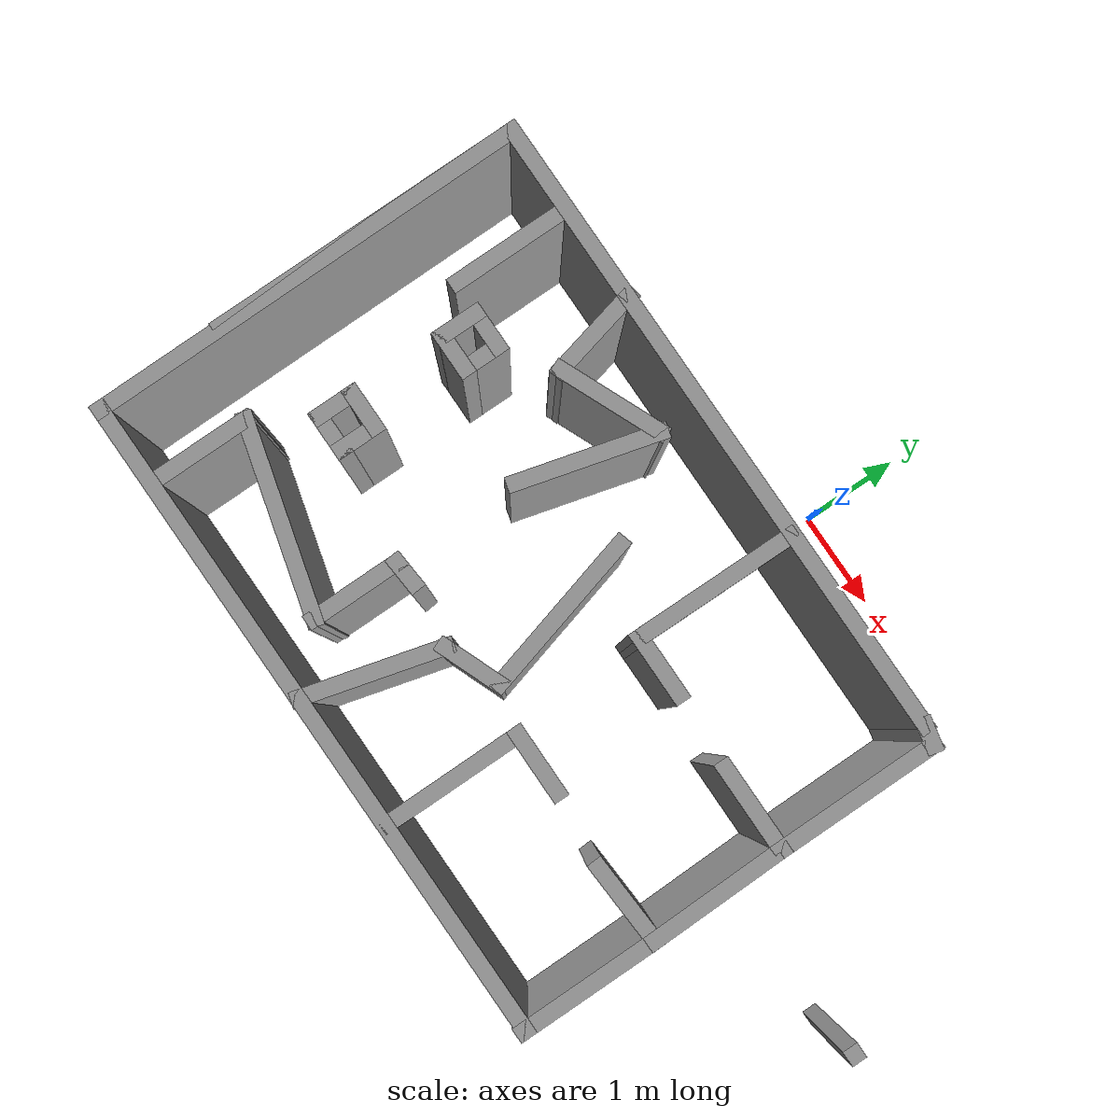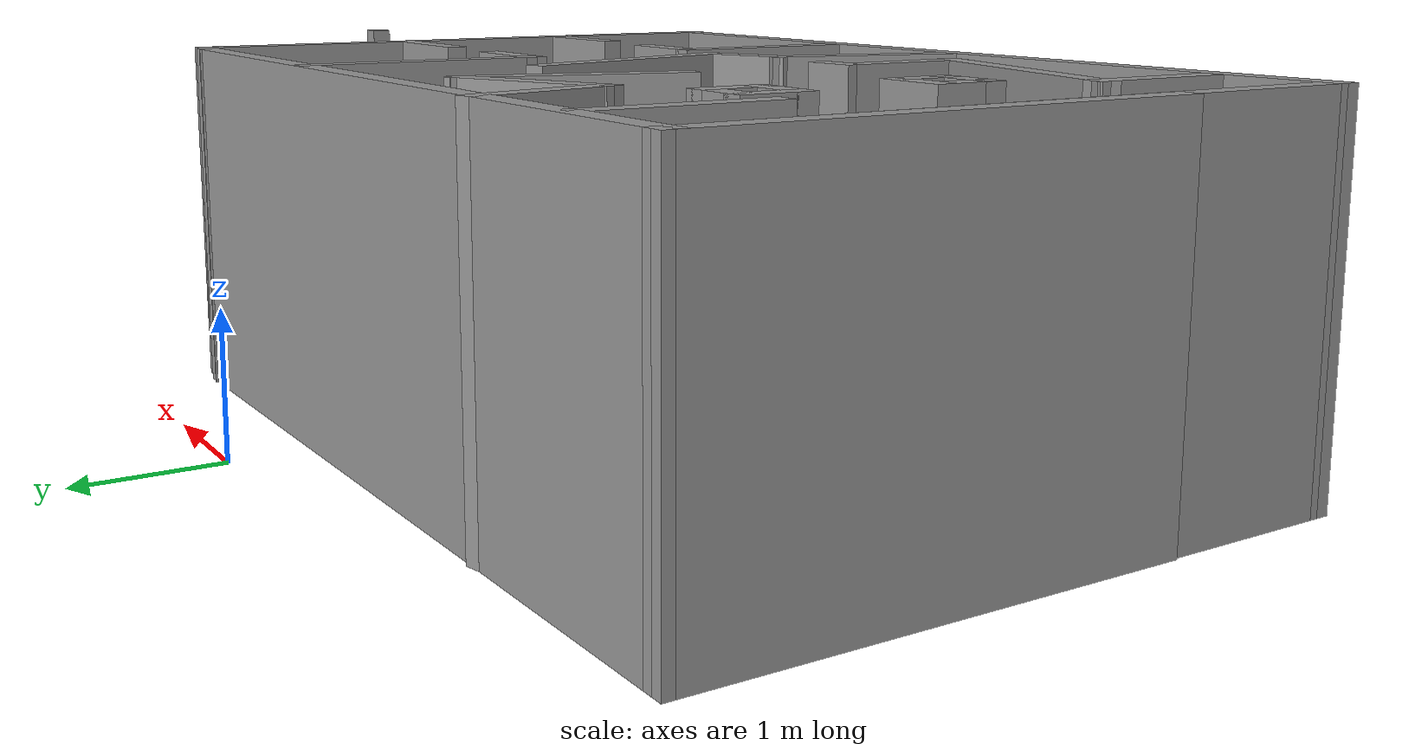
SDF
<?xml version='1.0'?>
<sdf version='1.7'>
  <model name='Maze_Testing'>
    <pose>-0.13169 -2.53776 0 0 -0 0</pose>
    <link name='Wall_0'>
      <collision name='Wall_0_Collision'>
        <geometry>
          <box>
            <size>3.25 0.15 2.5</size>
          </box>
        </geometry>
        <pose>0 0 1.25 0 -0 0</pose>
      </collision>
      <visual name='Wall_0_Visual'>
        <pose>0 0 1.25 0 -0 0</pose>
        <geometry>
          <box>
            <size>3.25 0.15 2.5</size>
          </box>
        </geometry>
        <material>
          <script>
            <uri>file://media/materials/scripts/gazebo.material</uri>
            <name>Gazebo/Grey</name>
          </script>
          <ambient>1 1 1 1</ambient>
        </material>
        <meta>
          <layer>0</layer>
        </meta>
      </visual>
      <pose>-4.15831 0.367759 0 0 -0 1.5708</pose>
    </link>
    <link name='Wall_1'>
      <collision name='Wall_1_Collision'>
        <geometry>
          <box>
            <size>4.53001 0.15 2.5</size>
          </box>
        </geometry>
        <pose>0 0 1.25 0 -0 0</pose>
      </collision>
      <visual name='Wall_1_Visual'>
        <pose>0 0 1.25 0 -0 0</pose>
        <geometry>
          <box>
            <size>4.53001 0.15 2.5</size>
          </box>
        </geometry>
        <material>
          <script>
            <uri>file://media/materials/scripts/gazebo.material</uri>
            <name>Gazebo/Grey</name>
          </script>
          <ambient>1 1 1 1</ambient>
        </material>
        <meta>
          <layer>0</layer>
        </meta>
      </visual>
      <pose>-4.14831 -0.272241 0 0 -0 -1.56623</pose>
    </link>
    <link name='Wall_10'>
      <collision name='Wall_10_Collision'>
        <geometry>
          <box>
            <size>0.5 0.15 2.5</size>
          </box>
        </geometry>
        <pose>0 0 1.25 0 -0 0</pose>
      </collision>
      <visual name='Wall_10_Visual'>
        <pose>0 0 1.25 0 -0 0</pose>
        <geometry>
          <box>
            <size>0.5 0.15 2.5</size>
          </box>
        </geometry>
        <material>
          <script>
            <uri>file://media/materials/scripts/gazebo.material</uri>
            <name>Gazebo/Grey</name>
          </script>
          <ambient>1 1 1 1</ambient>
        </material>
        <meta>
          <layer>0</layer>
        </meta>
      </visual>
      <pose>-2.81331 0.377759 0 0 -0 3.14159</pose>
    </link>
    <link name='Wall_11'>
      <collision name='Wall_11_Collision'>
        <geometry>
          <box>
            <size>0.5 0.15 2.5</size>
          </box>
        </geometry>
        <pose>0 0 1.25 0 -0 0</pose>
      </collision>
      <visual name='Wall_11_Visual'>
        <pose>0 0 1.25 0 -0 0</pose>
        <geometry>
          <box>
            <size>0.5 0.15 2.5</size>
          </box>
        </geometry>
        <material>
          <script>
            <uri>file://media/materials/scripts/gazebo.material</uri>
            <name>Gazebo/Grey</name>
          </script>
          <ambient>1 1 1 1</ambient>
        </material>
        <meta>
          <layer>0</layer>
        </meta>
      </visual>
      <pose>-2.98831 0.552759 0 0 -0 1.5708</pose>
    </link>
    <link name='Wall_13'>
      <collision name='Wall_13_Collision'>
        <geometry>
          <box>
            <size>0.5 0.15 2.5</size>
          </box>
        </geometry>
        <pose>0 0 1.25 0 -0 0</pose>
      </collision>
      <visual name='Wall_13_Visual'>
        <pose>0 0 1.25 0 -0 0</pose>
        <geometry>
          <box>
            <size>0.5 0.15 2.5</size>
          </box>
        </geometry>
        <material>
          <script>
            <uri>file://media/materials/scripts/gazebo.material</uri>
            <name>Gazebo/Grey</name>
          </script>
          <ambient>1 1 1 1</ambient>
        </material>
        <meta>
          <layer>0</layer>
        </meta>
      </visual>
      <pose>-2.83331 -0.562241 0 0 -0 0</pose>
    </link>
    <link name='Wall_14'>
      <collision name='Wall_14_Collision'>
        <geometry>
          <box>
            <size>0.5 0.15 2.5</size>
          </box>
        </geometry>
        <pose>0 0 1.25 0 -0 0</pose>
      </collision>
      <visual name='Wall_14_Visual'>
        <pose>0 0 1.25 0 -0 0</pose>
        <geometry>
          <box>
            <size>0.5 0.15 2.5</size>
          </box>
        </geometry>
        <material>
          <script>
            <uri>file://media/materials/scripts/gazebo.material</uri>
            <name>Gazebo/Grey</name>
          </script>
          <ambient>1 1 1 1</ambient>
        </material>
        <meta>
          <layer>0</layer>
        </meta>
      </visual>
      <pose>-2.65831 -0.737242 0 0 -0 -1.5708</pose>
    </link>
    <link name='Wall_15'>
      <collision name='Wall_15_Collision'>
        <geometry>
          <box>
            <size>0.5 0.15 2.5</size>
          </box>
        </geometry>
        <pose>0 0 1.25 0 -0 0</pose>
      </collision>
      <visual name='Wall_15_Visual'>
        <pose>0 0 1.25 0 -0 0</pose>
        <geometry>
          <box>
            <size>0.5 0.15 2.5</size>
          </box>
        </geometry>
        <material>
          <script>
            <uri>file://media/materials/scripts/gazebo.material</uri>
            <name>Gazebo/Grey</name>
          </script>
          <ambient>1 1 1 1</ambient>
        </material>
        <meta>
          <layer>0</layer>
        </meta>
      </visual>
      <pose>-2.83331 -0.912241 0 0 -0 3.14159</pose>
    </link>
    <link name='Wall_16'>
      <collision name='Wall_16_Collision'>
        <geometry>
          <box>
            <size>0.5 0.15 2.5</size>
          </box>
        </geometry>
        <pose>0 0 1.25 0 -0 0</pose>
      </collision>
      <visual name='Wall_16_Visual'>
        <pose>0 0 1.25 0 -0 0</pose>
        <geometry>
          <box>
            <size>0.5 0.15 2.5</size>
          </box>
        </geometry>
        <material>
          <script>
            <uri>file://media/materials/scripts/gazebo.material</uri>
            <name>Gazebo/Grey</name>
          </script>
          <ambient>1 1 1 1</ambient>
        </material>
        <meta>
          <layer>0</layer>
        </meta>
      </visual>
      <pose>-3.00831 -0.737242 0 0 -0 1.5708</pose>
    </link>
    <link name='Wall_18'>
      <collision name='Wall_18_Collision'>
        <geometry>
          <box>
            <size>1 0.15 2.5</size>
          </box>
        </geometry>
        <pose>0 0 1.25 0 -0 0</pose>
      </collision>
      <visual name='Wall_18_Visual'>
        <pose>0 0 1.25 0 -0 0</pose>
        <geometry>
          <box>
            <size>1 0.15 2.5</size>
          </box>
        </geometry>
        <material>
          <script>
            <uri>file://media/materials/scripts/gazebo.material</uri>
            <name>Gazebo/Grey</name>
          </script>
          <ambient>1 1 1 1</ambient>
        </material>
        <meta>
          <layer>0</layer>
        </meta>
      </visual>
      <pose>-3.34831 -1.88724 0 0 -0 1.5708</pose>
    </link>
    <link name='Wall_19'>
      <collision name='Wall_19_Collision'>
        <geometry>
          <box>
            <size>2 0.15 2.5</size>
          </box>
        </geometry>
        <pose>0 0 1.25 0 -0 0</pose>
      </collision>
      <visual name='Wall_19_Visual'>
        <pose>0 0 1.25 0 -0 0</pose>
        <geometry>
          <box>
            <size>2 0.15 2.5</size>
          </box>
        </geometry>
        <material>
          <script>
            <uri>file://media/materials/scripts/gazebo.material</uri>
            <name>Gazebo/Grey</name>
          </script>
          <ambient>1 1 1 1</ambient>
        </material>
        <meta>
          <layer>0</layer>
        </meta>
      </visual>
      <pose>-2.45483 -1.70165 0 0 -0 -0.261799</pose>
    </link>
    <link name='Wall_20'>
      <collision name='Wall_20_Collision'>
        <geometry>
          <box>
            <size>1.01 0.15 2.5</size>
          </box>
        </geometry>
        <pose>0 0 1.25 0 -0 0</pose>
      </collision>
      <visual name='Wall_20_Visual'>
        <pose>0 0 1.25 0 -0 0</pose>
        <geometry>
          <box>
            <size>1.01 0.15 2.5</size>
          </box>
        </geometry>
        <material>
          <script>
            <uri>file://media/materials/scripts/gazebo.material</uri>
            <name>Gazebo/Grey</name>
          </script>
          <ambient>1 1 1 1</ambient>
        </material>
        <meta>
          <layer>0</layer>
        </meta>
      </visual>
      <pose>-1.56135 -1.51106 0 0 -0 1.5708</pose>
    </link>
    <link name='Wall_27'>
      <collision name='Wall_27_Collision'>
        <geometry>
          <box>
            <size>1.03195 0.15 2.5</size>
          </box>
        </geometry>
        <pose>0 0 1.25 0 -0 0</pose>
      </collision>
      <visual name='Wall_27_Visual'>
        <pose>0 0 1.25 0 -0 0</pose>
        <geometry>
          <box>
            <size>1.03195 0.15 2.5</size>
          </box>
        </geometry>
        <material>
          <script>
            <uri>file://media/materials/scripts/gazebo.material</uri>
            <name>Gazebo/Grey</name>
          </script>
          <ambient>1 1 1 1</ambient>
        </material>
        <meta>
          <layer>0</layer>
        </meta>
      </visual>
      <pose>-2.25615 1.49878 0 0 -0 -1.337</pose>
    </link>
    <link name='Wall_31'>
      <collision name='Wall_31_Collision'>
        <geometry>
          <box>
            <size>1.16997 0.15 2.5</size>
          </box>
        </geometry>
        <pose>0 0 1.25 0 -0 0</pose>
      </collision>
      <visual name='Wall_31_Visual'>
        <pose>0 0 1.25 0 -0 0</pose>
        <geometry>
          <box>
            <size>1.16997 0.15 2.5</size>
          </box>
        </geometry>
        <material>
          <script>
            <uri>file://media/materials/scripts/gazebo.material</uri>
            <name>Gazebo/Grey</name>
          </script>
          <ambient>1 1 1 1</ambient>
        </material>
        <meta>
          <layer>0</layer>
        </meta>
      </visual>
      <pose>-1.68592 1.2723 0 0 -0 0.408321</pose>
    </link>
    <link name='Wall_32'>
      <collision name='Wall_32_Collision'>
        <geometry>
          <box>
            <size>1.5 0.15 2.5</size>
          </box>
        </geometry>
        <pose>0 0 1.25 0 -0 0</pose>
      </collision>
      <visual name='Wall_32_Visual'>
        <pose>0 0 1.25 0 -0 0</pose>
        <geometry>
          <box>
            <size>1.5 0.15 2.5</size>
          </box>
        </geometry>
        <material>
          <script>
            <uri>file://media/materials/scripts/gazebo.material</uri>
            <name>Gazebo/Grey</name>
          </script>
          <ambient>1 1 1 1</ambient>
        </material>
        <meta>
          <layer>0</layer>
        </meta>
      </visual>
      <pose>-1.38257 0.8228 0 0 -0 -1.8326</pose>
    </link>
    <link name='Wall_34'>
      <collision name='Wall_34_Collision'>
        <geometry>
          <box>
            <size>0.383796 0.15 2.5</size>
          </box>
        </geometry>
        <pose>0 0 1.25 0 -0 0</pose>
      </collision>
      <visual name='Wall_34_Visual'>
        <pose>0 0 1.25 0 -0 0</pose>
        <geometry>
          <box>
            <size>0.383796 0.15 2.5</size>
          </box>
        </geometry>
        <material>
          <script>
            <uri>file://media/materials/scripts/gazebo.material</uri>
            <name>Gazebo/Grey</name>
          </script>
          <ambient>0 0 0 1</ambient>
        </material>
        <meta>
          <layer>0</layer>
        </meta>
      </visual>
      <pose>-1.44483 -1.06165 0 0 -0 0.080564</pose>
    </link>
    <link name='Wall_35'>
      <collision name='Wall_35_Collision'>
        <geometry>
          <box>
            <size>1.5 0.15 2.5</size>
          </box>
        </geometry>
        <pose>0 0 1.25 0 -0 0</pose>
      </collision>
      <visual name='Wall_35_Visual'>
        <pose>0 0 1.25 0 -0 0</pose>
        <geometry>
          <box>
            <size>1.5 0.15 2.5</size>
          </box>
        </geometry>
        <material>
          <script>
            <uri>file://media/materials/scripts/gazebo.material</uri>
            <name>Gazebo/Grey</name>
          </script>
          <ambient>1 1 1 1</ambient>
        </material>
        <meta>
          <layer>0</layer>
        </meta>
      </visual>
      <pose>-0.888312 -1.78172 0 0 -0 1.309</pose>
    </link>
    <link name='Wall_38'>
      <collision name='Wall_38_Collision'>
        <geometry>
          <box>
            <size>0.720088 0.15 2.5</size>
          </box>
        </geometry>
        <pose>0 0 1.25 0 -0 0</pose>
      </collision>
      <visual name='Wall_38_Visual'>
        <pose>0 0 1.25 0 -0 0</pose>
        <geometry>
          <box>
            <size>0.720088 0.15 2.5</size>
          </box>
        </geometry>
        <material>
          <script>
            <uri>file://media/materials/scripts/gazebo.material</uri>
            <name>Gazebo/Grey</name>
          </script>
          <ambient>1 1 1 1</ambient>
        </material>
        <meta>
          <layer>0</layer>
        </meta>
      </visual>
      <pose>-0.44861 -1.03472 0 0 -0 0.377249</pose>
    </link>
    <link name='Wall_39'>
      <collision name='Wall_39_Collision'>
        <geometry>
          <box>
            <size>1.75 0.15 2.5</size>
          </box>
        </geometry>
        <pose>0 0 1.25 0 -0 0</pose>
      </collision>
      <visual name='Wall_39_Visual'>
        <pose>0 0 1.25 0 -0 0</pose>
        <geometry>
          <box>
            <size>1.75 0.15 2.5</size>
          </box>
        </geometry>
        <material>
          <script>
            <uri>file://media/materials/scripts/gazebo.material</uri>
            <name>Gazebo/Grey</name>
          </script>
          <ambient>1 1 1 1</ambient>
        </material>
        <meta>
          <layer>0</layer>
        </meta>
      </visual>
      <pose>-0.390665 -0.146982 0 0 -0 1.8326</pose>
    </link>
    <link name='Wall_4'>
      <collision name='Wall_4_Collision'>
        <geometry>
          <box>
            <size>6.5 0.15 2.5</size>
          </box>
        </geometry>
        <pose>0 0 1.25 0 -0 0</pose>
      </collision>
      <visual name='Wall_4_Visual'>
        <pose>0 0 1.25 0 -0 0</pose>
        <geometry>
          <box>
            <size>6.5 0.15 2.5</size>
          </box>
        </geometry>
        <material>
          <script>
            <uri>file://media/materials/scripts/gazebo.material</uri>
            <name>Gazebo/Grey</name>
          </script>
          <ambient>1 1 1 1</ambient>
        </material>
        <meta>
          <layer>0</layer>
        </meta>
      </visual>
      <pose>-0.98331 1.91776 0 0 -0 0</pose>
    </link>
    <link name='Wall_43'>
      <collision name='Wall_43_Collision'>
        <geometry>
          <box>
            <size>1.73 0.15 2.5</size>
          </box>
        </geometry>
        <pose>0 0 1.25 0 -0 0</pose>
      </collision>
      <visual name='Wall_43_Visual'>
        <pose>0 0 1.25 0 -0 0</pose>
        <geometry>
          <box>
            <size>1.73 0.15 2.5</size>
          </box>
        </geometry>
        <material>
          <script>
            <uri>file://media/materials/scripts/gazebo.material</uri>
            <name>Gazebo/Grey</name>
          </script>
          <ambient>1 1 1 1</ambient>
        </material>
        <meta>
          <layer>0</layer>
        </meta>
      </visual>
      <pose>0.17669 1.09776 0 0 -0 -1.57713</pose>
    </link>
    <link name='Wall_46'>
      <collision name='Wall_46_Collision'>
        <geometry>
          <box>
            <size>1 0.15 2.5</size>
          </box>
        </geometry>
        <pose>0 0 1.25 0 -0 0</pose>
      </collision>
      <visual name='Wall_46_Visual'>
        <pose>0 0 1.25 0 -0 0</pose>
        <geometry>
          <box>
            <size>1 0.15 2.5</size>
          </box>
        </geometry>
        <material>
          <script>
            <uri>file://media/materials/scripts/gazebo.material</uri>
            <name>Gazebo/Grey</name>
          </script>
          <ambient>1 1 1 1</ambient>
        </material>
        <meta>
          <layer>0</layer>
        </meta>
      </visual>
      <pose>1.94669 0.277759 0 0 -0 0</pose>
    </link>
    <link name='Wall_48'>
      <collision name='Wall_48_Collision'>
        <geometry>
          <box>
            <size>0.75 0.15 2.5</size>
          </box>
        </geometry>
        <pose>0 0 1.25 0 -0 0</pose>
      </collision>
      <visual name='Wall_48_Visual'>
        <pose>0 0 1.25 0 -0 0</pose>
        <geometry>
          <box>
            <size>0.75 0.15 2.5</size>
          </box>
        </geometry>
        <material>
          <script>
            <uri>file://media/materials/scripts/gazebo.material</uri>
            <name>Gazebo/Grey</name>
          </script>
          <ambient>1 1 1 1</ambient>
        </material>
        <meta>
          <layer>0</layer>
        </meta>
      </visual>
      <pose>0.47169 0.307759 0 0 -0 0</pose>
    </link>
    <link name='Wall_50'>
      <collision name='Wall_50_Collision'>
        <geometry>
          <box>
            <size>1.75 0.15 2.5</size>
          </box>
        </geometry>
        <pose>0 0 1.25 0 -0 0</pose>
      </collision>
      <visual name='Wall_50_Visual'>
        <pose>0 0 1.25 0 -0 0</pose>
        <geometry>
          <box>
            <size>1.75 0.15 2.5</size>
          </box>
        </geometry>
        <material>
          <script>
            <uri>file://media/materials/scripts/gazebo.material</uri>
            <name>Gazebo/Grey</name>
          </script>
          <ambient>1 1 1 1</ambient>
        </material>
        <meta>
          <layer>0</layer>
        </meta>
      </visual>
      <pose>2.37169 1.07776 0 0 -0 1.5708</pose>
    </link>
    <link name='Wall_51'>
      <collision name='Wall_51_Collision'>
        <geometry>
          <box>
            <size>0.15 0.15 2.5</size>
          </box>
        </geometry>
        <pose>0 0 1.25 0 -0 0</pose>
      </collision>
      <visual name='Wall_51_Visual'>
        <pose>0 0 1.25 0 -0 0</pose>
        <geometry>
          <box>
            <size>0.15 0.15 2.5</size>
          </box>
        </geometry>
        <material>
          <script>
            <uri>file://media/materials/scripts/gazebo.material</uri>
            <name>Gazebo/Grey</name>
          </script>
          <ambient>1 1 1 1</ambient>
        </material>
        <meta>
          <layer>0</layer>
        </meta>
      </visual>
      <pose>2.37169 1.87776 0 0 -0 0</pose>
    </link>
    <link name='Wall_52'>
      <collision name='Wall_52_Collision'>
        <geometry>
          <box>
            <size>0.334391 0.15 2.5</size>
          </box>
        </geometry>
        <pose>0 0 1.25 0 -0 0</pose>
      </collision>
      <visual name='Wall_52_Visual'>
        <pose>0 0 1.25 0 -0 0</pose>
        <geometry>
          <box>
            <size>0.334391 0.15 2.5</size>
          </box>
        </geometry>
        <material>
          <script>
            <uri>file://media/materials/scripts/gazebo.material</uri>
            <name>Gazebo/Grey</name>
          </script>
          <ambient>1 1 1 1</ambient>
        </material>
        <meta>
          <layer>0</layer>
        </meta>
      </visual>
      <pose>2.28169 1.89776 0 0 -0 2.92292</pose>
    </link>
    <link name='Wall_55'>
      <collision name='Wall_55_Collision'>
        <geometry>
          <box>
            <size>6.68397 0.15 2.5</size>
          </box>
        </geometry>
        <pose>0 0 1.25 0 -0 0</pose>
      </collision>
      <visual name='Wall_55_Visual'>
        <pose>0 0 1.25 0 -0 0</pose>
        <geometry>
          <box>
            <size>6.68397 0.15 2.5</size>
          </box>
        </geometry>
        <material>
          <script>
            <uri>file://media/materials/scripts/gazebo.material</uri>
            <name>Gazebo/Grey</name>
          </script>
          <ambient>1 1 1 1</ambient>
        </material>
        <meta>
          <layer>0</layer>
        </meta>
      </visual>
      <pose>-0.871363 -2.43961 0 0 -0 0.006926</pose>
    </link>
    <link name='Wall_56'>
      <collision name='Wall_56_Collision'>
        <geometry>
          <box>
            <size>1.5 0.15 2.5</size>
          </box>
        </geometry>
        <pose>0 0 1.25 0 -0 0</pose>
      </collision>
      <visual name='Wall_56_Visual'>
        <pose>0 0 1.25 0 -0 0</pose>
        <geometry>
          <box>
            <size>1.5 0.15 2.5</size>
          </box>
        </geometry>
        <material>
          <script>
            <uri>file://media/materials/scripts/gazebo.material</uri>
            <name>Gazebo/Grey</name>
          </script>
          <ambient>1 1 1 1</ambient>
        </material>
        <meta>
          <layer>0</layer>
        </meta>
      </visual>
      <pose>2.39558 -1.7572 0 0 -0 1.5708</pose>
    </link>
    <link name='Wall_57'>
      <collision name='Wall_57_Collision'>
        <geometry>
          <box>
            <size>0.935199 0.15 2.5</size>
          </box>
        </geometry>
        <pose>0 0 1.25 0 -0 0</pose>
      </collision>
      <visual name='Wall_57_Visual'>
        <pose>0 0 1.25 0 -0 0</pose>
        <geometry>
          <box>
            <size>0.935199 0.15 2.5</size>
          </box>
        </geometry>
        <material>
          <script>
            <uri>file://media/materials/scripts/gazebo.material</uri>
            <name>Gazebo/Grey</name>
          </script>
          <ambient>1 1 1 1</ambient>
        </material>
        <meta>
          <layer>0</layer>
        </meta>
      </visual>
      <pose>2.00364 -1.08962 0 0 -0 -3.08393</pose>
    </link>
    <link name='Wall_59'>
      <collision name='Wall_59_Collision'>
        <geometry>
          <box>
            <size>1.5 0.15 2.5</size>
          </box>
        </geometry>
        <pose>0 0 1.25 0 -0 0</pose>
      </collision>
      <visual name='Wall_59_Visual'>
        <pose>0 0 1.25 0 -0 0</pose>
        <geometry>
          <box>
            <size>1.5 0.15 2.5</size>
          </box>
        </geometry>
        <material>
          <script>
            <uri>file://media/materials/scripts/gazebo.material</uri>
            <name>Gazebo/Grey</name>
          </script>
          <ambient>1 1 1 1</ambient>
        </material>
        <meta>
          <layer>0</layer>
        </meta>
      </visual>
      <pose>0.27169 -1.71724 0 0 -0 1.5708</pose>
    </link>
    <link name='Wall_6'>
      <collision name='Wall_6_Collision'>
        <geometry>
          <box>
            <size>1.25 0.15 2.5</size>
          </box>
        </geometry>
        <pose>0 0 1.25 0 -0 0</pose>
      </collision>
      <visual name='Wall_6_Visual'>
        <pose>0 0 1.25 0 -0 0</pose>
        <geometry>
          <box>
            <size>1.25 0.15 2.5</size>
          </box>
        </geometry>
        <material>
          <script>
            <uri>file://media/materials/scripts/gazebo.material</uri>
            <name>Gazebo/Grey</name>
          </script>
          <ambient>1 1 1 1</ambient>
        </material>
        <meta>
          <layer>0</layer>
        </meta>
      </visual>
      <pose>-3.30831 1.30776 0 0 -0 -1.5708</pose>
    </link>
    <link name='Wall_60'>
      <collision name='Wall_60_Collision'>
        <geometry>
          <box>
            <size>0.75 0.15 2.5</size>
          </box>
        </geometry>
        <pose>0 0 1.25 0 -0 0</pose>
      </collision>
      <visual name='Wall_60_Visual'>
        <pose>0 0 1.25 0 -0 0</pose>
        <geometry>
          <box>
            <size>0.75 0.15 2.5</size>
          </box>
        </geometry>
        <material>
          <script>
            <uri>file://media/materials/scripts/gazebo.material</uri>
            <name>Gazebo/Grey</name>
          </script>
          <ambient>1 1 1 1</ambient>
        </material>
        <meta>
          <layer>0</layer>
        </meta>
      </visual>
      <pose>0.57169 -1.04224 0 0 -0 0</pose>
    </link>
    <link name='Wall_62'>
      <collision name='Wall_62_Collision'>
        <geometry>
          <box>
            <size>1.49496 0.15 2.5</size>
          </box>
        </geometry>
        <pose>0 0 1.25 0 -0 0</pose>
      </collision>
      <visual name='Wall_62_Visual'>
        <pose>0 0 1.25 0 -0 0</pose>
        <geometry>
          <box>
            <size>1.49496 0.15 2.5</size>
          </box>
        </geometry>
        <material>
          <script>
            <uri>file://media/materials/scripts/gazebo.material</uri>
            <name>Gazebo/Grey</name>
          </script>
          <ambient>1 1 1 1</ambient>
        </material>
        <meta>
          <layer>0</layer>
        </meta>
      </visual>
      <pose>2.38364 -0.394615 0 0 -0 1.58856</pose>
    </link>
    <link name='Wall_64'>
      <collision name='Wall_64_Collision'>
        <geometry>
          <box>
            <size>0.15 0.15 2.5</size>
          </box>
        </geometry>
        <pose>0 0 1.25 0 -0 0</pose>
      </collision>
      <visual name='Wall_64_Visual'>
        <pose>0 0 1.25 0 -0 0</pose>
        <geometry>
          <box>
            <size>0.15 0.15 2.5</size>
          </box>
        </geometry>
        <material>
          <script>
            <uri>file://media/materials/scripts/gazebo.material</uri>
            <name>Gazebo/Grey</name>
          </script>
          <ambient>1 1 1 1</ambient>
        </material>
        <meta>
          <layer>0</layer>
        </meta>
      </visual>
      <pose>4.15865 -0.201057 0 0 -0 0</pose>
    </link>
    <link name='Wall_8'>
      <collision name='Wall_8_Collision'>
        <geometry>
          <box>
            <size>0.5 0.15 2.5</size>
          </box>
        </geometry>
        <pose>0 0 1.25 0 -0 0</pose>
      </collision>
      <visual name='Wall_8_Visual'>
        <pose>0 0 1.25 0 -0 0</pose>
        <geometry>
          <box>
            <size>0.5 0.15 2.5</size>
          </box>
        </geometry>
        <material>
          <script>
            <uri>file://media/materials/scripts/gazebo.material</uri>
            <name>Gazebo/Grey</name>
          </script>
          <ambient>1 1 1 1</ambient>
        </material>
        <meta>
          <layer>0</layer>
        </meta>
      </visual>
      <pose>-2.81331 0.727759 0 0 -0 0</pose>
    </link>
    <link name='Wall_9'>
      <collision name='Wall_9_Collision'>
        <geometry>
          <box>
            <size>0.5 0.15 2.5</size>
          </box>
        </geometry>
        <pose>0 0 1.25 0 -0 0</pose>
      </collision>
      <visual name='Wall_9_Visual'>
        <pose>0 0 1.25 0 -0 0</pose>
        <geometry>
          <box>
            <size>0.5 0.15 2.5</size>
          </box>
        </geometry>
        <material>
          <script>
            <uri>file://media/materials/scripts/gazebo.material</uri>
            <name>Gazebo/Grey</name>
          </script>
          <ambient>1 1 1 1</ambient>
        </material>
        <meta>
          <layer>0</layer>
        </meta>
      </visual>
      <pose>-2.63831 0.552759 0 0 -0 -1.5708</pose>
    </link>
    <static>1</static>
  </model>
</sdf>
